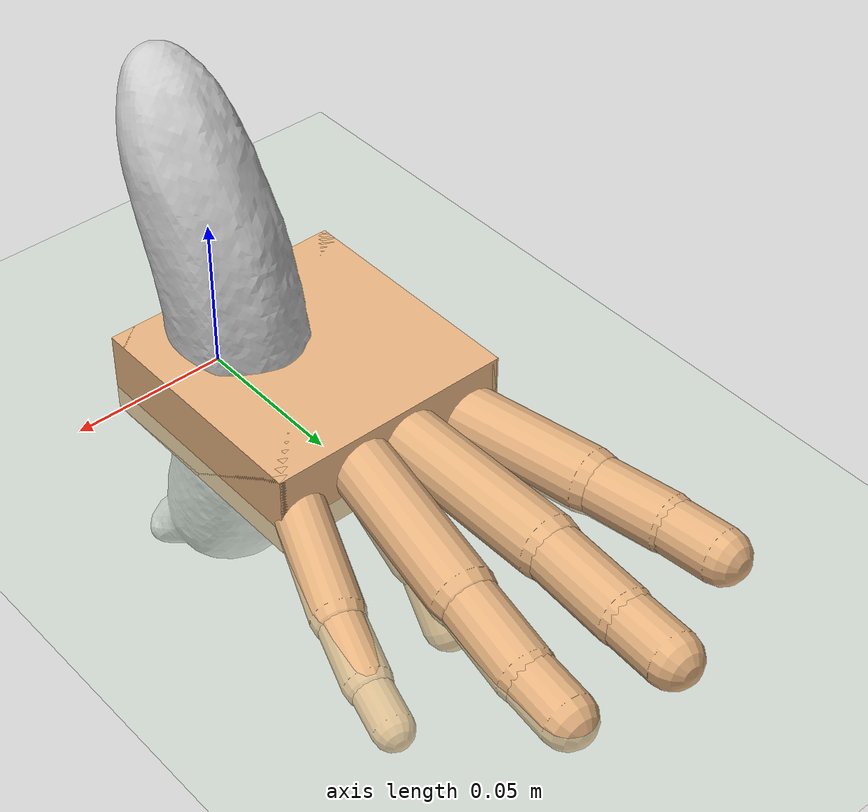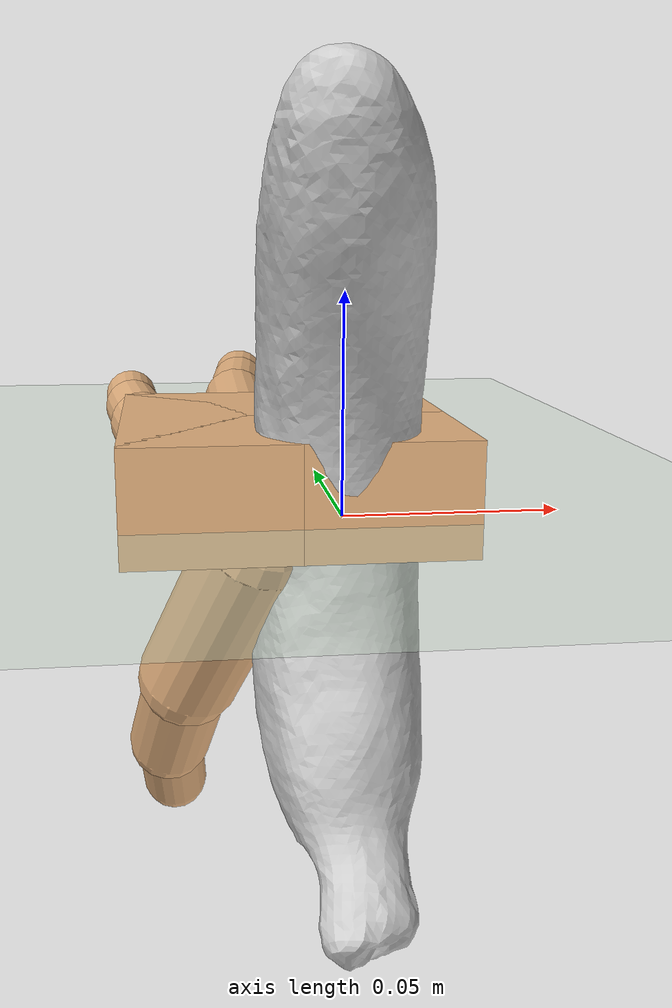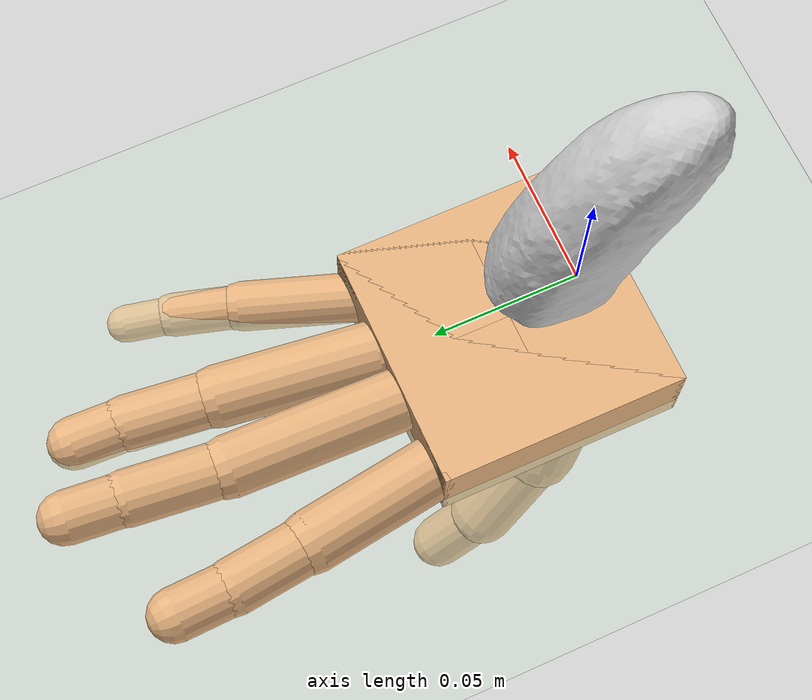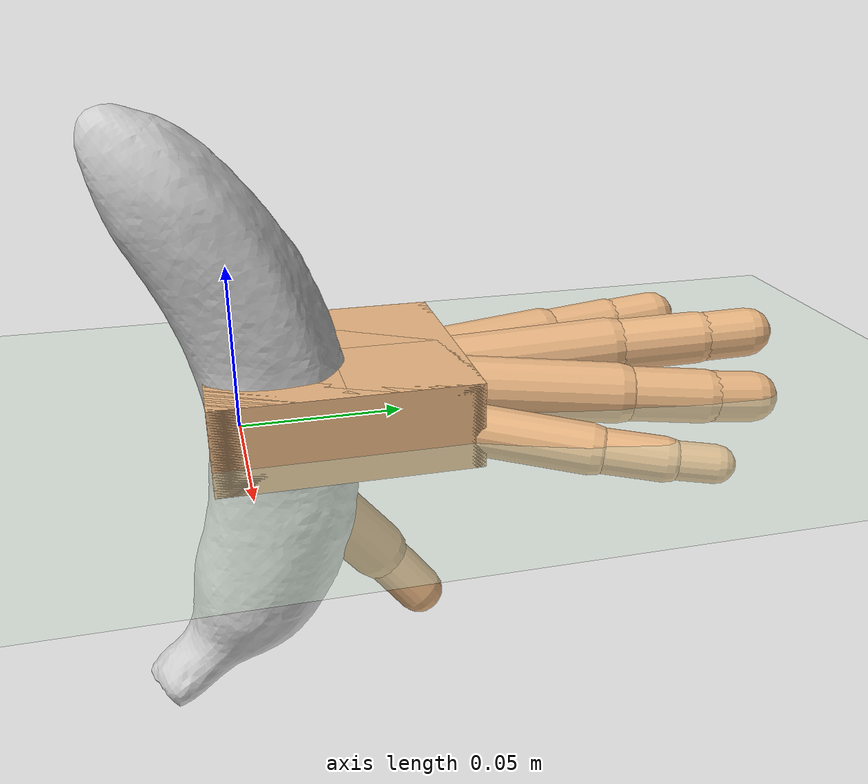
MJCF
<mujoco>
    <compiler angle="radian" coordinate="local" />
    <option timestep="0.002" iterations="20" apirate="200">
        <flag warmstart="enable" />
    </option>

    <size njmax="2000" nconmax="1000" nuser_jnt="1" nuser_site="1" nuser_tendon="1" nuser_sensor="1" nuser_actuator="16" nstack="600000" />

    <visual>
        <map fogstart="3" fogend="5" force="0.1" />
    </visual>

    <default>
        <default class="robot0:asset_class">
            <geom friction="1 0.005 0.001" condim="3" margin="0.0005" contype="1" conaffinity="1" />
            <joint limited="true" damping="0.1" armature="0.001" margin="0.01" frictionloss="0.001" />
            <site size="0.005" rgba="0.4 0.9 0.4 1" />
            <general ctrllimited="true" forcelimited="true" />
        </default>
        <default class="robot0:D_Touch">
            <site type="box" size="0.009 0.004 0.013" pos="0 -0.004 0.018" rgba="0.8 0.8 0.8 0.15" group="4" />
        </default>
        <default class="robot0:DC_Hand">
            <geom material="robot0:MatColl" contype="1" conaffinity="0" group="1" />
        </default>
        <default class="robot0:D_Vizual">
            <geom material="robot0:MatViz" contype="0" conaffinity="0" group="1" type="mesh" />
        </default>
        <default class="robot0:free">
            <joint type="free" damping="0" armature="0" limited="false" />
        </default>
        <default class="robot1:asset_class">
            <geom contype="1" conaffinity="1" />
        </default>
        <default class="robot1:DC_Hand">
            <geom material="robot1:MatColl" contype="1" conaffinity="0" group="2" />
        </default>
        <default class="robot1:D_Vizual">
            <geom material="robot1:MatViz" contype="0" conaffinity="0" group="2" type="mesh" />
        </default>
        <default class="robot1:free">
            <joint type="free" damping="0" armature="0" limited="false" />
        </default>
        <default class="robot2:asset_class">
            <geom contype="0" conaffinity="0" />
        </default>
        <default class="robot2:DC_Hand">
            <geom material="robot2:MatColl" contype="0" conaffinity="0" group="2" />
        </default>
        <default class="robot2:D_Vizual">
            <geom material="robot2:MatViz" contype="0" conaffinity="0" group="1" type="mesh" />
        </default>
        <default class="robot2:free">
            <joint type="free" damping="0" armature="0" limited="false" />
        </default>
    </default>

    <contact>
    </contact>

    <actuator>
    </actuator>

    <asset>
        <texture type="skybox" file="J:\code\HOIC\assets\hand_model\spheremesh\skybox.png" gridsize="3 4" width="512" height="512" gridlayout=".U..LFRB.D.." />

        <texture name="robot0:texplane" type="2d" builtin="checker" rgb1="0.5 0.6 0.7" rgb2="0.1 0.15 0.2" width="512" height="512" />
        <texture name="robot0:texgeom" type="cube" builtin="flat" mark="cross" width="127" height="127" rgb1="0.3 0.6 0.5" rgb2="0.3 0.6 0.5" markrgb="0 0 0" random="0.01" />

        <material name="robot0:MatGnd" reflectance="0.5" texture="robot0:texplane" texrepeat="1 1" texuniform="true" />
        <material name="robot0:MatColl" specular="0.75" shininess=".1" reflectance="0.5" rgba="0.9 .7 .5 1" />
        <material name="robot0:MatViz" specular="0.75" shininess="0.1" reflectance="0.5" rgba="0.93 0.93 0.93 1" />
        <material name="robot1:MatGnd" reflectance="0.5" texture="robot0:texplane" texrepeat="1 1" texuniform="true" />
        <material name="robot1:MatColl" specular="1" shininess="0.3" reflectance="0.1" rgba="0.9 .7 .5 1" />
        <material name="robot1:MatViz" specular="0.75" shininess="0.1" reflectance="0.5" rgba="1.0 0.1 0.1 1" />
        <material name="robot0:object" texture="robot0:texgeom" texuniform="false" />
        <material name="floor_mat" specular="0" shininess="0.5" reflectance="0" rgba="0.2 0.2 0.2 0" />
        <material name="MatPlane" reflectance="0.3" shininess="1" specular="1" texrepeat="60 60" texture="robot0:texplane" />
    <mesh name="C_banana1" file="J:\code\HOIC\assets\SingleDepth\Collision/banana21.stl" scale="0.95 0.95 1.0" />
        <mesh name="C_banana2" file="J:\code\HOIC\assets\SingleDepth\Collision/banana22.stl" scale="0.95 0.95 1.0" />
        <mesh name="C_banana3" file="J:\code\HOIC\assets\SingleDepth\Collision/banana23.stl" scale="0.95 0.95 1.0" />
        <mesh name="V_banana" file="J:\code\HOIC\assets\SingleDepth\Visual/banana.stl" />
        <material name="object" specular="0.75" shininess="0.1" reflectance="0.3" rgba="0.8 0.8 0.8 1.0" />
        <material name="object_ref" specular="0.75" shininess="0.1" reflectance="0.3" rgba="0.8 0.8 0.8 1.0" />

    </asset>

    <worldbody>

        <camera pos="-0.0257 -0.004077 0.7" euler="1.57 0 0" fovy="42" />

        <geom conaffinity="1" condim="3" name="floor" pos="0 0 0" rgba="0.8 0.9 0.8 1" size="100 100 .2" type="plane" material="MatPlane" />
        <body name="handworld" pos="0 0 0" euler="0 0 0">
            <body name="link_palm" pos="0 0 0" euler="0 0 0" childclass="robot0:asset_class">
            <joint name="robot0:slide0" type="slide" pos="0 0 0" axis="1 0 0" range="-2.0 2.0" armature="0.005" />
            <joint name="robot0:slide1" type="slide" pos="0 0 0" axis="0 1 0" range="-2.0 2.0" armature="0.005" />
            <joint name="robot0:slide2" type="slide" pos="0 0 0" axis="0 0 1" range="0.2 2.0" armature="0.005" />
            <joint name="robot0:WRJ0" type="hinge" pos="0 0 0" axis="1 0 0" range="-3.14 3.14" armature="0.005" user="1123" />
            <joint name="robot0:WRJ1" type="hinge" pos="0 0 0" axis="0 1 0" range="-1.57 1.57" armature="0.005" user="1123" />
            <joint name="robot0:WRJ2" type="hinge" pos="0 0 0" axis="0 0 1" range="-3.14 3.14" armature="0.005" user="1123" />
            <inertial pos="-0.01 0.03 0.005" mass="0.3" diaginertia="0.001 0.001 0.001" />

            <geom class="robot0:DC_Hand" name="robot0:C_palm0" type="box" pos="-0.03 0.01 0.005" size="0.02 0.02 0.0135" euler="0 0 0" />
            <geom class="robot0:DC_Hand" name="robot0:C_palm1" type="box" pos="-0.03 0.05 0.005" size="0.02 0.02 0.0135" euler="0 0 0" />
            <geom class="robot0:DC_Hand" name="robot0:C_palm2" type="box" pos="0.01 0.01 0.005" size="0.02 0.02 0.0135" euler="0 0 0" />
            <geom class="robot0:DC_Hand" name="robot0:C_palm3" type="box" pos="0.01 0.05 0.005" size="0.02 0.02 0.0135" euler="0 0 0" />

            <body name="link_ff_pm" quat="0.124112 -0.0723957  0.989102 0.0321224" pos="-0.0394865 0.0673819 0.0011229">
                <joint name="robot0:FFJ3x" type="hinge" pos="0 0 0" axis="1 0 0" range="-1.3 1.6" armature="0.005" user="1123" />
                <joint name="robot0:FFJ3z" type="hinge" pos="0 0 0" axis="0 0 1" range="-0.35 0.3" armature="0.005" user="1123" />
                <inertial pos="0 0.0228296 0" mass="0.014" diaginertia="1e-05 1e-05 1e-05" />

                <geom class="robot0:DC_Hand" name="robot0:C_FF3" type="capsule" euler="1.57 0 0" pos="0 0.0228296 0" size="0.01 0.0228296" />
                <body name="link_ff_md" quat="-0.999945 0 0 -0.0104861" pos="0 0.0456592 0">
                    <inertial pos="0 0.0136348 0" mass="0.012" diaginertia="1e-05 1e-05 1e-05" />
                    <joint name="robot0:FFJ2x" type="hinge" pos="0 0 0" axis="1 0 0" range="-0.1 2.0" armature="0.005" user="1123" />

                    <geom class="robot0:DC_Hand" name="robot0:C_FF2" type="capsule" euler="1.57 0 0" pos="0 0.0136348 0" size="0.009 0.0136348" />
                    <body name="link_ff_dd" quat="-0.9992 0 0 -0.0399893" pos="0 0.0272696 0">
                        <inertial pos="0 0.0093181 0" mass="0.01" diaginertia="1e-05 1e-05 1e-05" />
                        <joint name="robot0:FFJ1x" type="hinge" pos="0 0 0" axis="1 0 0" range="-0.1 2.0" armature="0.005" user="1123" />

                        <geom class="robot0:DC_Hand" name="robot0:C_FF1" type="capsule" euler="1.57 0 0" pos="0 0.0093181 0" size="0.0085 0.0093181" />
                        <body name="link_ff_tip" pos="0.001204 0.018596 0.000187">
                            <inertial pos="0 0 0" euler="0 0 0" mass="0.001" diaginertia="1e-06 1e-06 1e-06" />
                        </body>
                    </body>
                </body>
            </body>
            <body name="link_mf_pm" quat="0.0601268 0.0089805 0.998009 0.0168109" pos="-0.017018 0.0703726 0.00635547">
                <inertial pos="0 0.02810025 0" mass="0.014" diaginertia="1e-05 1e-05 1e-05" />
                <joint name="robot0:MFJ3x" type="hinge" pos="0 0 0" axis="1 0 0" range="-1.3 1.6" armature="0.005" user="1123" />
                <joint name="robot0:MFJ3z" type="hinge" pos="0 0 0" axis="0 0 1" range="-0.4 0.3" armature="0.005" user="1123" />

                <geom class="robot0:DC_Hand" name="robot0:C_MF3" type="capsule" euler="1.57 0 0" pos="0 0.02810025 0" size="0.01 0.02810025" />
                <body name="link_mf_md" quat="-0.999229 0 0 -0.0392598" pos="0 0.0562005 0">
                    <inertial pos="0 0.0160573 0" mass="0.012" diaginertia="1e-05 1e-05 1e-05" />
                    <joint name="robot0:MFJ2x" type="hinge" pos="0 0 0" axis="1 0 0" range="-0.1 2.0" armature="0.005" user="1123" />

                    <geom class="robot0:DC_Hand" name="robot0:C_MF2" type="capsule" euler="1.57 0 0" pos="0 0.0160573 0" size="0.009 0.0160573" />
                    <body name="link_mf_dd" quat="-0.999973 0 0 0.0073836" pos="0 0.0321146 0">
                        <inertial pos="0 0.00917255 0" mass="0.01" diaginertia="1e-05 1e-05 1e-05" />
                        <joint name="robot0:MFJ1x" type="hinge" pos="0 0 0" axis="1 0 0" range="-0.1 2.0" armature="0.005" user="1123" />

                        <geom class="robot0:DC_Hand" name="robot0:C_MF1" type="capsule" euler="1.57 0 0" pos="0 0.00917255 0" size="0.0085 0.00917255" />
                        <body name="link_mf_tip" pos="-0.000537 0.01830 0.00121">
                            <inertial pos="0 0 0" euler="0 0 0" mass="0.001" diaginertia="1e-06 1e-06 1e-06" />
                        </body>
                    </body>
                </body>
            </body>
            <body name="link_lf_pm" quat="-0.102886 0.198238 0.97371 -0.0447794" pos="0.0213338 0.0665155 0.000943775">
                <joint name="robot0:LFJ3x" type="hinge" pos="0 0 0" axis="1 0 0" range="-1.3 1.6" armature="0.005" user="1123" />
                <joint name="robot0:LFJ3z" type="hinge" pos="0 0 0" axis="0 0 1" range="-0.65 0.2" armature="0.005" user="1123" />
                <inertial pos="0 0.01892845 0" mass="0.07" diaginertia="0.0005 0.0005 0.0005" />

                <geom class="robot0:DC_Hand" name="robot0:C_LF3" type="capsule" euler="1.57 0 0" pos="0 0.01892845 0" size="0.008 0.01892845" />
                <body name="link_lf_md" quat="-0.99963 0 0 0.0271924" pos="0 0.0378569 0">
                    <inertial pos="0 0.0111746 0" mass="0.06" diaginertia="0.0005 0.0005 0.0005" />
                    <joint name="robot0:LFJ2x" type="hinge" pos="0 0 0" axis="1 0 0" range="-0.1 2.0" armature="0.005" user="1123" />

                    <geom class="robot0:DC_Hand" name="robot0:C_LF2" type="capsule" euler="1.57 0 0" pos="0 0.0111746 0" size="0.007 0.0111746" />
                    <body name="link_lf_dd" quat="-0.999229 0 0 0.0392598" pos="0 0.0223492 0">
                        <inertial pos="0 0.007704 0" mass="0.05" diaginertia="0.0005 0.0005 0.0005" />
                        <joint name="robot0:LFJ1x" type="hinge" pos="0 0 0" axis="1 0 0" range="-0.1 2.0" armature="0.005" user="1123" />

                        <geom class="robot0:DC_Hand" name="robot0:C_LF1" type="capsule" euler="1.57 0 0" pos="0 0.007704 0" size="0.006 0.007704" />
                        <body name="link_lf_tip" pos="0.0002265 0.01531 0.001613">
                            <inertial pos="0 0 0" euler="0 0 0" mass="0.001" diaginertia="1e-06 1e-06 1e-06" />
                        </body>
                    </body>
                </body>
            </body>
            <body name="link_rf_pm" quat="-0.00348342 0.0794858 0.995874 -0.0436436" pos="0.000347831 0.0693786 0.00601275">
                <joint name="robot0:RFJ3x" type="hinge" pos="0 0 0" axis="1 0 0" range="-1.3 1.6" armature="0.005" user="1123" />
                <joint name="robot0:RFJ3z" type="hinge" pos="0 0 0" axis="0 0 1" range="-0.3 0.1" armature="0.005" user="1123" />
                <inertial pos="0 0.02588765 0" mass="0.014" diaginertia="1e-05 1e-05 1e-05" />

                <geom class="robot0:DC_Hand" name="robot0:C_RF3" type="capsule" euler="1.57 0 0" pos="0 0.02588765 0" size="0.01 0.02588765" />
                <body name="link_rf_md" quat="-0.999981 0 0 0.00624612" pos="0 0.0517753 0">
                    <inertial pos="0 0.01479295 0" mass="0.012" diaginertia="1e-05 1e-05 1e-05" />
                    <joint name="robot0:RFJ2x" type="hinge" pos="0 0 0" axis="1 0 0" range="-0.1 2.0" armature="0.005" user="1123" />

                    <geom class="robot0:DC_Hand" name="robot0:C_RF2" type="capsule" euler="1.57 0 0" pos="0 0.01479295 0" size="0.009 0.01479295" />
                    <body name="link_rf_dd" quat="-0.999229 0 0 0.0392598" pos="0 0.0295859 0">
                        <inertial pos="0 0.0084531 0" mass="0.01" diaginertia="1e-05 1e-05 1e-05" />
                        <joint name="robot0:RFJ1x" type="hinge" pos="0 0 0" axis="1 0 0" range="-0.1 2.0" armature="0.005" user="1123" />

                        <geom class="robot0:DC_Hand" name="robot0:C_RF1" type="capsule" euler="1.57 0 0" pos="0 0.0084531 0" size="0.0085 0.0084531" />
                        <body name="link_rf_tip" pos="0.000591 0.01678 0.001933">
                            <inertial pos="0 0 0" euler="0 0 0" mass="0.001" diaginertia="1e-06 1e-06 1e-06" />
                        </body>
                    </body>
                </body>
            </body>
            <body name="link_th_pm" quat="-0.563478 0.172425  0.648492 -0.481892" pos="-0.0194548 0.00353334 -0.00776414">
                <joint name="robot0:THJ3x" type="hinge" pos="0 0 0" axis="1 0 0" range="-0.5 1.0" armature="0.005" user="1123" />
                <joint name="robot0:THJ3z" type="hinge" pos="0 0 0" axis="0 0 1" range="-1.0 0.1" armature="0.005" user="1123" />
                <inertial pos="0 0.02441495 0" mass="0.016" diaginertia="1e-05 1e-05 1e-05" />

                <geom class="robot0:DC_Hand" name="robot0:C_TH3" euler="1.57 0 0" type="capsule" pos="0 0.02441495 0" size="0.013 0.02441495" />
                <body name="link_th_md" quat="-0.994276 0.0997603 -0.00381833 0.0380559" pos="0 0.0488299 0">
                    <joint name="robot0:THJ2x" type="hinge" pos="0 0 0" axis="1 0 0" range="-0.9 0.2" armature="0.005" user="1123" />
                    <inertial pos="0 0.01749035 0" mass="0.014" diaginertia="1e-05 1e-05 1e-05" />

                    <geom class="robot0:DC_Hand" name="robot0:C_TH2" type="capsule" euler="1.57 0 0" pos="0 0.01749035 0" size="0.011 0.01749035" />
                    <body name="link_th_dd" quat="-0.994683 0.0998011 0.00253618 -0.0252774" pos="0 0.0349807 0">
                        <joint name="robot0:THJ1x" type="hinge" pos="0 0 0" axis="1 0 0" range="-0.9 0.1" armature="0.005" user="1123" />
                        <inertial pos="0 0.01241705 0" mass="0.012" diaginertia="1e-05 1e-05 1e-05" />

                        <geom class="robot0:DC_Hand" name="robot0:C_TH1" type="capsule" euler="1.57 0 0" pos="0 0.01241705 0" size="0.009 0.01241705" />
                        <body name="link_th_tip" pos="0 0.01601 0.001388">
                            <inertial pos="0 0 0" euler="0 0 0" mass="0.001" diaginertia="1e-06 1e-06 1e-06" />
                        </body>
                    </body>
                </body>
            </body>
        </body>
        </body>
        <body name="handworld1" pos="0 0 0" euler="0 0 0">
            <body name="ref_link_palm" pos="0 0 0" euler="0 0 0" childclass="robot1:asset_class">
            <joint name="robot1:slide0" type="slide" pos="0 0 0" axis="1 0 0" range="-2.0 2.0" armature="0.005" />
            <joint name="robot1:slide1" type="slide" pos="0 0 0" axis="0 1 0" range="-2.0 2.0" armature="0.005" />
            <joint name="robot1:slide2" type="slide" pos="0 0 0" axis="0 0 1" range="0.2 2.0" armature="0.005" />
            <joint name="robot1:WRJ0" type="hinge" pos="0 0 0" axis="1 0 0" range="-3.14 3.14" armature="0.005" user="1123" />
            <joint name="robot1:WRJ1" type="hinge" pos="0 0 0" axis="0 1 0" range="-1.57 1.57" armature="0.005" user="1123" />
            <joint name="robot1:WRJ2" type="hinge" pos="0 0 0" axis="0 0 1" range="-3.14 3.14" armature="0.005" user="1123" />
            <inertial pos="-0.03 0 0" euler="0 0 0.2" mass="0.3" diaginertia="0.001 0.001 0.001" />

            <geom class="robot1:DC_Hand" name="robot1:C_palm0" type="box" pos="-0.01 0.03 0.005" size="0.04 0.04 0.0135" euler="0 0 0" />

            <body name="ref_link_ff_pm" quat="0.124112 -0.0723957  0.989102 0.0321224" pos="-0.0394865 0.0673819 0.0011229">
                <joint name="robot1:FFJ3x" type="hinge" pos="0 0 0" axis="1 0 0" range="-1.3 1.6" armature="0.005" user="1123" />
                <joint name="robot1:FFJ3z" type="hinge" pos="0 0 0" axis="0 0 1" range="-0.35 0.3" armature="0.005" user="1123" />
                <inertial pos="0 0.0228296 0" mass="0.014" diaginertia="1e-05 1e-05 1e-05" />

                <geom class="robot1:DC_Hand" name="robot1:C_FF3" type="capsule" euler="1.57 0 0" pos="0 0.0228296 0" size="0.01 0.0228296" />
                <body name="ref_link_ff_md" quat="-0.999945 0 0 -0.0104861" pos="0 0.0456592 0">
                    <inertial pos="0 0.0136348 0" mass="0.012" diaginertia="1e-05 1e-05 1e-05" />
                    <joint name="robot1:FFJ2x" type="hinge" pos="0 0 0" axis="1 0 0" range="-0.1 2.0" armature="0.005" user="1123" />

                    <geom class="robot1:DC_Hand" name="robot1:C_FF2" type="capsule" euler="1.57 0 0" pos="0 0.0136348 0" size="0.009 0.0136348" />
                    <body name="ref_link_ff_dd" quat="-0.9992 0 0 -0.0399893" pos="0 0.0272696 0">
                        <inertial pos="0 0.0093181 0" mass="0.01" diaginertia="1e-05 1e-05 1e-05" />
                        <joint name="robot1:FFJ1x" type="hinge" pos="0 0 0" axis="1 0 0" range="-0.1 2.0" armature="0.005" user="1123" />

                        <geom class="robot1:DC_Hand" name="robot1:C_FF1" type="capsule" euler="1.57 0 0" pos="0 0.0093181 0" size="0.0085 0.0093181" />
                        <body name="ref_link_ff_tip" pos="0.001204 0.018596 0.000187">
                            <inertial pos="0 0 0" euler="0 0 0" mass="0.001" diaginertia="1e-06 1e-06 1e-06" />
                        </body>
                    </body>
                </body>
            </body>
            <body name="ref_link_mf_pm" quat="0.0601268 0.0089805 0.998009 0.0168109" pos="-0.017018 0.0703726 0.00635547">
                <inertial pos="0 0.02810025 0" mass="0.014" diaginertia="1e-05 1e-05 1e-05" />
                <joint name="robot1:MFJ3x" type="hinge" pos="0 0 0" axis="1 0 0" range="-1.3 1.6" armature="0.005" user="1123" />
                <joint name="robot1:MFJ3z" type="hinge" pos="0 0 0" axis="0 0 1" range="-0.4 0.3" armature="0.005" user="1123" />

                <geom class="robot1:DC_Hand" name="robot1:C_MF3" type="capsule" euler="1.57 0 0" pos="0 0.02810025 0" size="0.01 0.02810025" />
                <body name="ref_link_mf_md" quat="-0.999229 0 0 -0.0392598" pos="0 0.0562005 0">
                    <inertial pos="0 0.0160573 0" mass="0.012" diaginertia="1e-05 1e-05 1e-05" />
                    <joint name="robot1:MFJ2x" type="hinge" pos="0 0 0" axis="1 0 0" range="-0.1 2.0" armature="0.005" user="1123" />

                    <geom class="robot1:DC_Hand" name="robot1:C_MF2" type="capsule" euler="1.57 0 0" pos="0 0.0160573 0" size="0.009 0.0160573" />
                    <body name="ref_link_mf_dd" quat="-0.999973 0 0 0.0073836" pos="0 0.0321146 0">
                        <inertial pos="0 0.00917255 0" mass="0.01" diaginertia="1e-05 1e-05 1e-05" />
                        <joint name="robot1:MFJ1x" type="hinge" pos="0 0 0" axis="1 0 0" range="-0.1 2.0" armature="0.005" user="1123" />

                        <geom class="robot1:DC_Hand" name="robot1:C_MF1" type="capsule" euler="1.57 0 0" pos="0 0.00917255 0" size="0.0085 0.00917255" />
                        <body name="ref_link_mf_tip" pos="-0.000537 0.01830 0.00121">
                            <inertial pos="0 0 0" euler="0 0 0" mass="0.001" diaginertia="1e-06 1e-06 1e-06" />
                        </body>
                    </body>
                </body>
            </body>
            <body name="ref_link_lf_pm" quat="-0.102886 0.198238 0.97371 -0.0447794" pos="0.0213338 0.0665155 0.000943775">
                <joint name="robot1:LFJ3x" type="hinge" pos="0 0 0" axis="1 0 0" range="-1.3 1.6" armature="0.005" user="1123" />
                <joint name="robot1:LFJ3z" type="hinge" pos="0 0 0" axis="0 0 1" range="-0.65 0.2" armature="0.005" user="1123" />
                <inertial pos="0 0.01892845 0" mass="0.07" diaginertia="0.0005 0.0005 0.0005" />

                <geom class="robot1:DC_Hand" name="robot1:C_LF3" type="capsule" euler="1.57 0 0" pos="0 0.01892845 0" size="0.008 0.01892845" />
                <body name="ref_link_lf_md" quat="-0.99963 0 0 0.0271924" pos="0 0.0378569 0">
                    <inertial pos="0 0.0111746 0" mass="0.06" diaginertia="0.0005 0.0005 0.0005" />
                    <joint name="robot1:LFJ2x" type="hinge" pos="0 0 0" axis="1 0 0" range="-0.1 2.0" armature="0.005" user="1123" />

                    <geom class="robot1:DC_Hand" name="robot1:C_LF2" type="capsule" euler="1.57 0 0" pos="0 0.0111746 0" size="0.007 0.0111746" />
                    <body name="ref_link_lf_dd" quat="-0.999229 0 0 0.0392598" pos="0 0.0223492 0">
                        <inertial pos="0 0.007704 0" mass="0.05" diaginertia="0.0005 0.0005 0.0005" />
                        <joint name="robot1:LFJ1x" type="hinge" pos="0 0 0" axis="1 0 0" range="-0.1 2.0" armature="0.005" user="1123" />

                        <geom class="robot1:DC_Hand" name="robot1:C_LF1" type="capsule" euler="1.57 0 0" pos="0 0.007704 0" size="0.006 0.007704" />
                        <body name="ref_link_lf_tip" pos="0.0002265 0.01531 0.001613">
                            <inertial pos="0 0 0" euler="0 0 0" mass="0.001" diaginertia="1e-06 1e-06 1e-06" />
                        </body>
                    </body>
                </body>
            </body>
            <body name="ref_link_rf_pm" quat="-0.00348342 0.0794858 0.995874 -0.0436436" pos="0.000347831 0.0693786 0.00601275">
                <joint name="robot1:RFJ3x" type="hinge" pos="0 0 0" axis="1 0 0" range="-1.3 1.6" armature="0.005" user="1123" />
                <joint name="robot1:RFJ3z" type="hinge" pos="0 0 0" axis="0 0 1" range="-0.3 0.1" armature="0.005" user="1123" />
                <inertial pos="0 0.02588765 0" mass="0.014" diaginertia="1e-05 1e-05 1e-05" />

                <geom class="robot1:DC_Hand" name="robot1:C_RF3" type="capsule" euler="1.57 0 0" pos="0 0.02588765 0" size="0.01 0.02588765" />
                <body name="ref_link_rf_md" quat="-0.999981 0 0 0.00624612" pos="0 0.0517753 0">
                    <inertial pos="0 0.01479295 0" mass="0.012" diaginertia="1e-05 1e-05 1e-05" />
                    <joint name="robot1:RFJ2x" type="hinge" pos="0 0 0" axis="1 0 0" range="-0.1 2.0" armature="0.005" user="1123" />

                    <geom class="robot1:DC_Hand" name="robot1:C_RF2" type="capsule" euler="1.57 0 0" pos="0 0.01479295 0" size="0.009 0.01479295" />
                    <body name="ref_link_rf_dd" quat="-0.999229 0 0 0.0392598" pos="0 0.0295859 0">
                        <inertial pos="0 0.0084531 0" mass="0.01" diaginertia="1e-05 1e-05 1e-05" />
                        <joint name="robot1:RFJ1x" type="hinge" pos="0 0 0" axis="1 0 0" range="-0.1 2.0" armature="0.005" user="1123" />

                        <geom class="robot1:DC_Hand" name="robot1:C_RF1" type="capsule" euler="1.57 0 0" pos="0 0.0084531 0" size="0.0085 0.0084531" />
                        <body name="ref_link_rf_tip" pos="0.000591 0.01678 0.001933">
                            <inertial pos="0 0 0" euler="0 0 0" mass="0.001" diaginertia="1e-06 1e-06 1e-06" />
                        </body>
                    </body>
                </body>
            </body>
            <body name="ref_link_th_pm" quat="-0.563478 0.172425  0.648492 -0.481892" pos="-0.0194548 0.00353334 -0.00776414">
                <joint name="robot1:THJ3x" type="hinge" pos="0 0 0" axis="1 0 0" range="-0.5 1.0" armature="0.005" user="1123" />
                <joint name="robot1:THJ3z" type="hinge" pos="0 0 0" axis="0 0 1" range="-1.0 0.1" armature="0.005" user="1123" />
                <inertial pos="0 0.02441495 0" mass="0.016" diaginertia="1e-05 1e-05 1e-05" />

                <geom class="robot1:DC_Hand" name="robot1:C_TH3" euler="1.57 0 0" type="capsule" pos="0 0.02441495 0" size="0.013 0.02441495" />
                <body name="ref_link_th_md" quat="-0.994276 0.0997603 -0.00381833 0.0380559" pos="0 0.0488299 0">
                    <joint name="robot1:THJ2x" type="hinge" pos="0 0 0" axis="1 0 0" range="-0.9 0.2" armature="0.005" user="1123" />
                    <inertial pos="0 0.01749035 0" mass="0.014" diaginertia="1e-05 1e-05 1e-05" />

                    <geom class="robot1:DC_Hand" name="robot1:C_TH2" type="capsule" euler="1.57 0 0" pos="0 0.01749035 0" size="0.011 0.01749035" />
                    <body name="ref_link_th_dd" quat="-0.994683 0.0998011 0.00253618 -0.0252774" pos="0 0.0349807 0">
                        <joint name="robot1:THJ1x" type="hinge" pos="0 0 0" axis="1 0 0" range="-0.9 0.1" armature="0.005" user="1123" />
                        <inertial pos="0 0.01241705 0" mass="0.012" diaginertia="1e-05 1e-05 1e-05" />

                        <geom class="robot1:DC_Hand" name="robot1:C_TH1" type="capsule" euler="1.57 0 0" pos="0 0.01241705 0" size="0.009 0.01241705" />
                        <body name="ref_link_th_tip" pos="0 0.01601 0.001388">
                            <inertial pos="0 0 0" euler="0 0 0" mass="0.001" diaginertia="1e-06 1e-06 1e-06" />
                        </body>
                    </body>
                </body>
            </body>
        </body>
        </body>
        <light directional="true" ambient="0.2 0.2 0.2" diffuse="0.8 0.8 0.8" specular="0.3 0.3 0.3" castshadow="false" pos="0 1 4" dir="0 0 -1" name="light0" />
    <body name="banana" pos="0 0 0" quat="1 0 0 0">
            <geom name="C_banana1" condim="3" density="125" friction="1 0.5 0.1" group="4" conaffinity="1" contype="1" solref="-6000 -300" solimp="1.0 0.95 0.001 0.5 2" mesh="C_banana1" type="mesh" material="object" />
            <geom name="C_banana2" condim="3" density="125" friction="1 0.5 0.1" group="4" conaffinity="1" contype="1" solref="-6000 -300" solimp="1.0 0.95 0.001 0.5 2" mesh="C_banana2" type="mesh" material="object" />
            <geom name="C_banana3" condim="3" density="125" friction="1 0.5 0.1" group="4" conaffinity="1" contype="1" solref="-6000 -300" solimp="1.0 0.95 0.001 0.5 2" mesh="C_banana3" type="mesh" material="object" />
            <geom name="V_banana" density="0" conaffinity="0" contype="0" group="1" mesh="V_banana" type="mesh" material="object" />
            <joint armature="0.001" damping="0" frictionloss="0.001" limited="false" type="free" />
        </body>
    <body name="banana_ref" pos="0 0 0" quat="1 0 0 0">
            <geom name="C_banana1_ref" condim="3" density="125" friction="1 0.5 0.1" group="4" conaffinity="1" contype="1" solref="-6000 -300" solimp="1.0 0.95 0.001 0.5 2" mesh="C_banana1" type="mesh" material="object_ref" />
            <geom name="C_banana2_ref" condim="3" density="125" friction="1 0.5 0.1" group="4" conaffinity="1" contype="1" solref="-6000 -300" solimp="1.0 0.95 0.001 0.5 2" mesh="C_banana2" type="mesh" material="object_ref" />
            <geom name="C_banana3_ref" condim="3" density="125" friction="1 0.5 0.1" group="4" conaffinity="1" contype="1" solref="-6000 -300" solimp="1.0 0.95 0.001 0.5 2" mesh="C_banana3" type="mesh" material="object_ref" />
            <geom name="V_banana_ref" density="0" conaffinity="0" contype="0" group="1" mesh="V_banana" type="mesh" material="object_ref" />
            <joint armature="0.001" damping="0" frictionloss="0.001" limited="false" type="free" />
        </body>
    </worldbody>
<sensor /><tendon /><equality /></mujoco>
